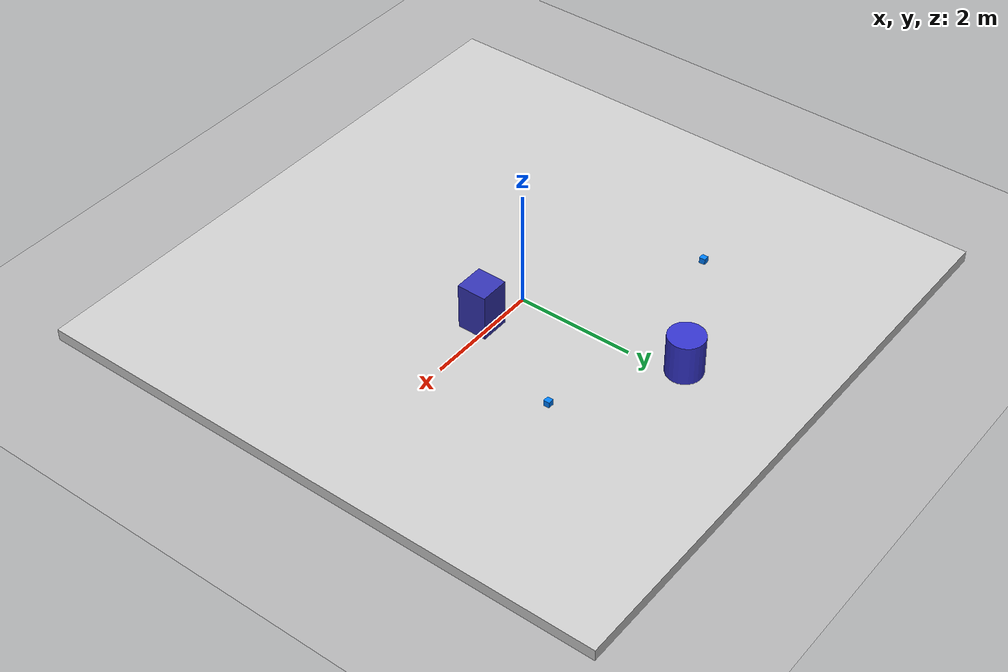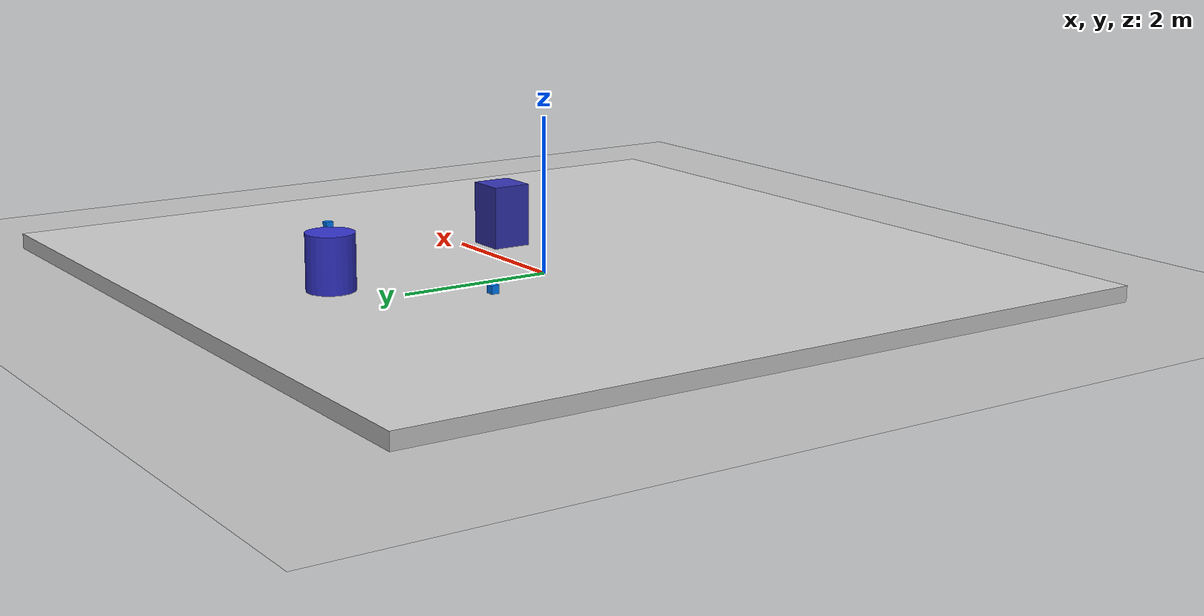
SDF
<?xml version="1.0" ?>
<sdf version="1.6">
  <world name="olympus_simulation_simple">
    <!-- Physics, scene broadcaster and user command plugins -->
    <plugin name="gz::sim::systems::Physics"
            filename="gz-sim8-physics-system">
    </plugin>
    <plugin name="gz::sim::systems::SceneBroadcaster"
            filename="gz-sim8-scene-broadcaster-system">
    </plugin>
    <plugin name="gz::sim::systems::UserCommands"
            filename="gz-sim8-user-commands-system">
    </plugin>

    <!-- Include standard models -->
    <include>
      <uri>model://sun</uri>
    </include>

    <include>
      <uri>model://ground_plane</uri>
    </include>

    <!-- Include sensor model at a specific location -->
    <include>
      <uri>model://sensor_model</uri>
      <name>sensor_1</name>
      <pose>2 2 0.5 0 0 0</pose>
      <static>true</static>
    </include>

    <!-- Include sensor model at a different location -->
    <include>
      <uri>model://sensor_model</uri>
      <name>sensor_2</name>
      <pose>-2 2 0.5 0 0 0</pose>
      <static>true</static>
    </include>

    <!-- Include human walker model -->
    <include>
      <uri>model://human_walker</uri>
      <name>human_1</name>
      <pose>0 3 0 0 0 0</pose>
      <static>false</static>
    </include>

    <!-- Example static sensor grid model -->
    <model name="sensor_grid_static">
      <static>true</static>
      <pose>0 0 0.1 0 0 0</pose>
      <link name="link">
        <visual name="visual">
          <geometry>
            <box>
              <size>10 10 0.2</size>
            </box>
          </geometry>
          <material>
            <ambient>0.8 0.8 0.8 1</ambient>
            <diffuse>0.8 0.8 0.8 1</diffuse>
          </material>
        </visual>
        <collision name="collision">
          <geometry>
            <box>
              <size>10 10 0.2</size>
            </box>
          </geometry>
        </collision>
      </link>
      <plugin name="pose_publisher"
              filename="gz-sim8-pose-publisher-system">
        <publish_nested_model_pose>true</publish_nested_model_pose>
        <publish_link_pose>false</publish_link_pose>
        <static_publisher>true</static_publisher>
        <update_frequency>1</update_frequency>
      </plugin>
    </model>

    <!-- Example dynamic walker box model -->
    <model name="walker_box_dynamic">
      <pose>1 0 0.5 0 0 0</pose>
      <link name="link">
        <inertial>
          <mass>20.0</mass>
          <inertia>
            <ixx>0.83</ixx>
            <ixy>0.0</ixy>
            <ixz>0.0</ixz>
            <iyy>0.83</iyy>
            <iyz>0.0</iyz>
            <izz>0.83</izz>
          </inertia>
        </inertial>
        <visual name="visual">
          <geometry>
            <box>
              <size>0.5 0.5 1.0</size>
            </box>
          </geometry>
          <material>
            <ambient>0.2 0.2 0.7 1</ambient>
            <diffuse>0.2 0.2 0.7 1</diffuse>
          </material>
        </visual>
        <collision name="collision">
          <geometry>
            <box>
              <size>0.5 0.5 1.0</size>
            </box>
          </geometry>
        </collision>
      </link>
      <plugin name="pose_publisher"
              filename="gz-sim8-pose-publisher-system">
        <publish_nested_model_pose>true</publish_nested_model_pose>
        <publish_link_pose>false</publish_link_pose>
        <static_publisher>false</static_publisher>
        <update_frequency>10</update_frequency>
      </plugin>
    </model>

    <!-- MmWave Sensor Model -->
    <model name="mmwave_sensor">
      <static>true</static>
      <pose>0 0 1 0 0 0</pose>
      <plugin name="gz::sim::systems::PosePublisher"
              filename="gz-sim8-pose-publisher-system">
        <static_publisher>true</static_publisher>
        <update_frequency>10</update_frequency>
      </plugin>
      <link name="link">
        <sensor name="mmwave" type="custom">
          <always_on>1</always_on>
          <visualize>true</visualize>
          <update_rate>10</update_rate>
          <topic>/mmwave/points</topic>
          <plugin name="olympus_sim::MmWaveSensorPlugin"
                  filename="libMmWaveSensorPlugin.so">
            <horizontal_fov>1.5708</horizontal_fov>
            <vertical_fov>0.5236</vertical_fov>
            <horizontal_resolution>64</horizontal_resolution>
            <vertical_resolution>32</vertical_resolution>
            <min_range>0.05</min_range>
            <max_range>50</max_range>
            <noise_mean>0</noise_mean>
            <noise_stddev>0.01</noise_stddev>
            <default_rcs>1.0</default_rcs>
            <min_rcs>0.1</min_rcs>
            <max_radial_velocity>30.0</max_radial_velocity>
            <use_point_clouds_only>false</use_point_clouds_only>
            <wsl_compat_mode>false</wsl_compat_mode>
            <force_raycast>true</force_raycast>
            <visualize>true</visualize>
          </plugin>
        </sensor>
      </link>
    </model>
  </world>
</sdf>

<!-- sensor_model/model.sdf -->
<sdf version="1.6">
  <model name="sensor_model">
    <static>true</static>
    <link name="link">
      <visual name="visual">
        <geometry>
          <box>
            <size>0.1 0.1 0.1</size>
          </box>
        </geometry>
        <material>
          <ambient>0.0 0.5 1.0 1</ambient>
          <diffuse>0.0 0.5 1.0 1</diffuse>
          <specular>0.1 0.1 0.1 1</specular>
          <emissive>0 0 0 1</emissive>
        </material>
      </visual>
      <collision name="collision">
        <geometry>
          <box>
            <size>0.1 0.1 0.1</size>
          </box>
        </geometry>
      </collision>
    </link>

    <!-- MQTT Plugin for sensor visualization and messaging -->
    <plugin name="olympus::OlympusMQTTPlugin" filename="libOlympusMQTTPlugin.so">
      <ros_topic_prefix>/olympus/sensor/</ros_topic_prefix>
      <sensor_id>${sensor_id}</sensor_id>
      <display_offset>0 0 0.15</display_offset>
      <text_size>12</text_size>
      <update_rate>1.0</update_rate>
    </plugin>

    <!-- mmWave Sensor Plugin -->
    <plugin name="olympus_sim::MmWaveSensorPlugin" filename="libMmWaveSensorPlugin.so">
      <topic_name>/mmwave/points</topic_name>
      <update_rate>10.0</update_rate>
      <horizontal_fov>1.5708</horizontal_fov>
      <vertical_fov>0.5236</vertical_fov>
      <min_range>0.05</min_range>
      <max_range>50.0</max_range>
      <horizontal_resolution>32</horizontal_resolution>
      <vertical_resolution>16</vertical_resolution>
      <noise_mean>0.0</noise_mean>
      <noise_stddev>0.01</noise_stddev>
      <visualize>true</visualize>
    </plugin>
  </model>
</sdf>

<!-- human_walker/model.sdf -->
<sdf version="1.6">
  <model name="human_walker">
    <link name="link">
      <visual name="mesh">
        <geometry>
          <cylinder>
            <radius>0.3</radius>
            <length>1.8</length>
          </cylinder>
        </geometry>
        <material>
          <ambient>0.2 0.2 0.8 1</ambient>
          <diffuse>0.2 0.2 0.8 1</diffuse>
          <specular>0.1 0.1 0.1 1</specular>
        </material>
      </visual>
    </link>
    <plugin name="gz::sim::systems::Actor" filename="libgz-sim-actor-system.so">
      <trajectory id="0" type="repeat">
        <waypoint time="0"   x="0"  y="0"  z="0"/>
        <waypoint time="4"   x="4"  y="0"  z="0"/>
        <waypoint time="8"   x="4"  y="4"  z="0"/>
        <waypoint time="12"  x="0"  y="4"  z="0"/>
        <waypoint time="16"  x="0"  y="0"  z="0"/>
      </trajectory>
    </plugin>
  </model>
</sdf>
